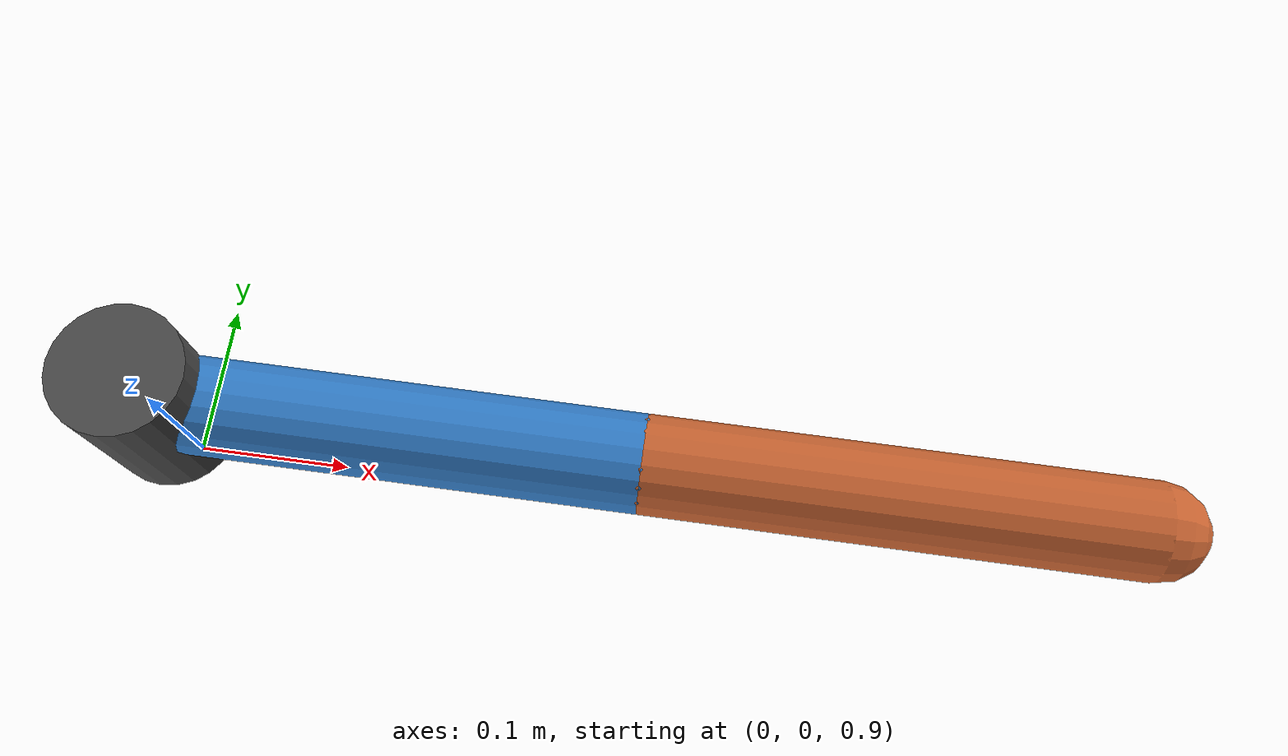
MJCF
<mujoco model="planar_2dof_arm">

  <!-- Global simulation options. timestep is your integrator's dt.
       Too large -> the sim explodes (NaNs). This is pitfall #1. -->
  <option timestep="0.002" gravity="0 0 -9.81"/>

  <worldbody>
    <!-- A light so the scene isn't flat. Not physics, just rendering. -->
    <light pos="0 0 2" dir="0 0 -1" diffuse="0.8 0.8 0.8"/>

    <!-- The fixed base the arm hangs from. It has NO joint, so it is
         welded to the world frame (static). pos lifts it up so the arm
         has room to swing below it. -->
    <body name="base" pos="0 0 1">
      <geom name="base_geom" type="cylinder" size="0.04 0.05" contype="0" conaffinity="0" rgba="0.3 0.3 0.3 1"/> -->

      <!-- LINK 1 (shoulder). The hinge axis "0 1 0" is the world y-a'xis,
           so this link swings in the x-z plane and falls under gravity. -->
      <body name="link1" pos="0 0 0">
        <joint name="shoulder" type="hinge" axis="0 1 0" pos="0.0 0 0" range="-180 180"/>
        <geom name="link1_geom" type="capsule" fromto="0 0 0  0.3 0 0" size="0.03" rgba="0.2 0.5 0.8 1"/>

        <!-- LINK 2 (elbow), mounted at the far end of link1 (pos x=0.3). -->
        <body name="link2" pos="0.3 0 0">
          <joint name="elbow" type="hinge" axis="0 1 0" pos="0.0 0 0" range="-180 180"/>
          <geom name="link2_geom" type="capsule" fromto="0 0 0  0.3 0 0" size="0.03" rgba="0.8 0.4 0.2 1"/>

          <!-- A site at the very tip = the "end effector". Sites are
               massless reference frames you attach sensors to. -->
          <site name="tip" pos="0.3 0 0" size="0.02" rgba="1 1 0 1"/>
        </body>
      </body>
    </body>
  </worldbody>

  <actuator>
    <position name="shoulder_pos_act" joint="shoulder" kp="10" kv="1" ctrlrange="-3.14 3.14"/>
    <position name="elbow_pos_act"    joint="elbow"    kp="10" kv="1" ctrlrange="-3.14 3.14"/>

  </actuator>

  <sensor>
    <jointpos name="shoulder_pos" joint="shoulder"/>
    <jointpos name="elbow_pos"    joint="elbow"/>
    <jointvel name="shoulder_vel" joint="shoulder"/>
    <jointvel name="elbow_vel"    joint="elbow"/>
    <framepos name="tip_pos" objtype="site" objname="tip"/>
  </sensor>
</mujoco>
